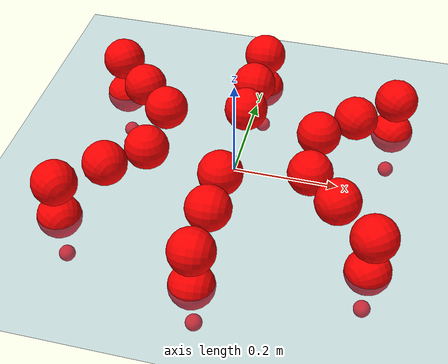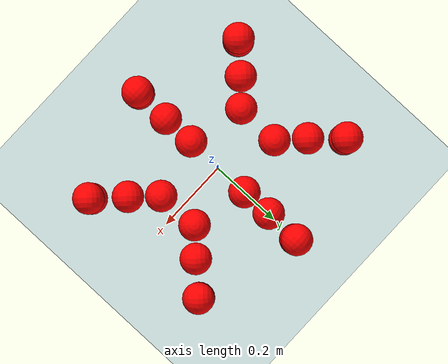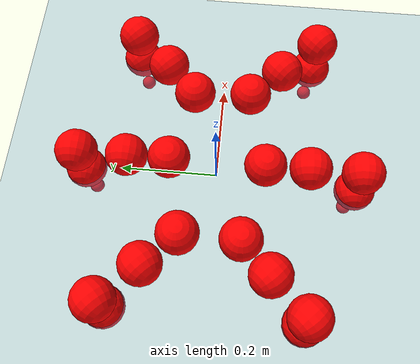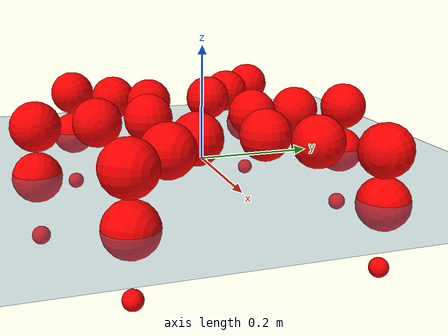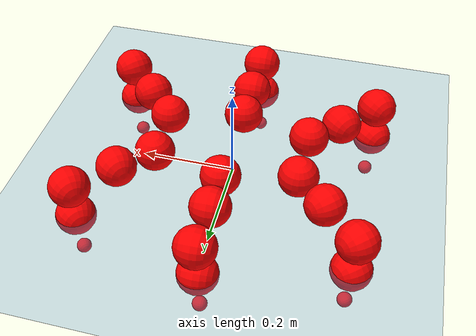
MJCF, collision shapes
<mujoco model="Golem">
  <compiler angle="radian" assetdir="assets" balanceinertia="true" inertiafromgeom="false"/>

  <option timestep="0.005" density="1.2" viscosity="2e-05"/>

  <size nkey="1"/>

  <visual>
    <quality shadowsize="8192"/>
    <map shadowclip="0.5"/>
  </visual>

  <default>
    <default class="/">
      <joint armature="0.01" damping="0.01" frictionloss="0.01"/>
      <geom contype="0" conaffinity="0" group="1" solref="-1000 -80"/>
      <site size="0.01 0.005 0.005" group="5"/>
      <general forcelimited="true" biastype="affine" gainprm="25" biasprm="0 -25 -0.5"/>
      <default class="visual">
        <geom type="mesh" group="2"/>
      </default>
      <default class="collision">
        <geom group="3"/>
      </default>
      <default class="foot">
        <geom size="0.01 0 0" condim="6" group="4" priority="1" solimp="0.015 1 0.01"/>
      </default>
      <default class="reward_collision_sphere">
        <geom group="5" rgba="1 0 0 1"/>
      </default>
    </default>
  </default>

  <asset>
    <texture type="skybox" colorspace="auto" name="//unnamed_texture_0" builtin="gradient" rgb1="0.95 0.95 0.95" rgb2="0.95 0.95 0.95" width="100" height="600"/>
    <texture type="2d" colorspace="auto" name="texplane" builtin="checker" rgb1="0.345 0.575 0.748" rgb2="0.345 0.575 0.748" markrgb="1 1 1" width="512" height="512"/>
    <material name="MatPlane" class="/" texture="texplane" texuniform="true" texrepeat="2 2" specular="0.9"/>
    <mesh name="body" class="/" file="body.stl" scale="0.001 0.001 0.001"/>
    <mesh name="coxa" class="/" file="coxa.stl" scale="0.001 0.001 0.001"/>
    <mesh name="femur" class="/" file="femur.stl" scale="0.001 0.001 0.001"/>
    <mesh name="tibia" class="/" file="tibia.stl" scale="0.001 0.001 0.001"/>
    <mesh name="tarsus" class="/" file="tarsus.stl" scale="0.001 0.001 0.001"/>
  </asset>

  <worldbody>
    <geom name="floor" class="/" size="100 100 0.125" type="plane" group="0" material="MatPlane"/>
    <light name="toplight_shadow" class="/" pos="0 0 5" dir="0.0990148 0.0990148 -0.990148" type="directional" ambient="0.04 0.04 0.04" diffuse="0.55 0.55 0.55" specular="0.12 0.12 0.12"/>
    <light name="toplight_fill" class="/" pos="0 0 5" dir="0.0990148 0.0990148 -0.990148" type="directional" castshadow="false" ambient="0.04 0.04 0.04" diffuse="0.3 0.3 0.3" specular="0.08 0.08 0.08"/>
    <body name="trunk" pos="-2.69089e-05 -0.00120728 -0.00212296" quat="1 0.000160881 -0.000484852 -0.000142744">
      <inertial pos="0.00319417 -0.00311044 -0.000471167" quat="0.999916 -0.00135743 -0.0094295 -0.0088026" mass="4.1268" diaginertia="0.0081396 0.00692205 0.029049"/>
      <joint name="//unnamed_joint_0" type="free"/>
      <geom name="//unnamed_geom_1" class="/" pos="0 0 0.0792339" quat="1 0 0 0" type="mesh" rgba="0.9 0.9 0.9 1" mesh="body"/>
      <site name="imu" class="/" pos="0.114768 0.0041057 0.117333" size="0.0104969"/>
      <camera name="track" class="/" pos="0 -1.88367 0" quat="0.707107 0.707107 0 0" mode="trackcom"/>
      <camera name="ego_camera" class="/" pos="0.125996 0 0.123803" quat="-0.5 -0.5 0.5 0.5"/>
      <body name="coxa_RR" pos="-0.173144 -0.0789374 0.0794294" quat="0.383149 -4.34872e-05 -0.000622511 -0.923687">
        <inertial pos="0.0014317 0.0025453 -0.0022873" quat="0.999904 -0.00688925 0.00720428 0.00959095" mass="0.226048" diaginertia="0.00805619 0.00720464 0.0275499"/>
        <joint name="coxa_joint_RR" class="/" pos="0 0 0" axis="-0.00779035 -0.00412014 -0.999961" stiffness="0.00831388" range="-3.08353 3.0883" armature="0.0111379" damping="0" frictionloss="0.0119269"/>
        <geom name="//unnamed_geom_2" class="/" type="mesh" rgba="0.2 0.2 0.2 1" mesh="coxa"/>
        <geom name="//unnamed_geom_3" class="reward_collision_sphere" size="0.0419875" pos="-0.029076 0 0"/>
        <body name="femur_RR" pos="0.0554508 -0.00215011 -0.00144999" quat="0.499903 -0.50024 0.499958 0.499899">
          <inertial pos="-0.000408957 -0.00104324 0.00255021" quat="0.999939 0.00103608 -0.00738021 0.00815471" mass="0.22923" diaginertia="0.00876928 0.00712651 0.0288518"/>
          <joint name="femur_joint_RR" class="/" pos="0 0 0" axis="0.00021107 0.00214067 -0.999998" range="-3.08809 3.08711" armature="0.0108574" damping="0.0189077" frictionloss="0.0103509"/>
          <geom name="//unnamed_geom_4" class="/" type="mesh" rgba="0.9 0.9 0.9 1" mesh="femur"/>
          <geom name="//unnamed_geom_5" class="reward_collision_sphere" size="0.0419875"/>
          <body name="tibia_RR" pos="-0.00167372 -0.0993344 0.00173679" quat="0.000223333 1 -9.99628e-05 0.000157499">
            <inertial pos="0.000620809 -0.000360495 0.00135466" quat="1 -3.53427e-06 0.000655984 5.54822e-05" mass="0.229095" diaginertia="0.00845031 0.00733998 0.0285347"/>
            <joint name="tibia_joint_RR" class="/" pos="0 0 0" axis="0.000275292 -3.21815e-05 1" stiffness="0.00125487" range="-3.14755 3.17161" armature="0.00906719" damping="0.0169772" frictionloss="0.00955071"/>
            <geom name="//unnamed_geom_6" class="/" type="mesh" rgba="0.2 0.2 0.2 1" mesh="tibia"/>
            <geom name="//unnamed_geom_7" class="reward_collision_sphere" size="0.0419875"/>
            <body name="tarsus_RR" pos="0.0847275 0.00131418 0.000830902" quat="0.999999 -0.000970687 0.000670307 0.000532777">
              <inertial pos="0.0612658 -0.000978724 0.00183322" quat="0.510369 0.491865 0.497372 0.500213" mass="0.230101" diaginertia="0.00865969 0.00716756 0.0283538"/>
              <joint name="tarsus_joint_RR" class="/" pos="0 0 0" axis="-0.0105014 -0.00305151 0.99994" range="-3.19017 3.14133" armature="0.0091685" damping="0.013616" frictionloss="0.0108307"/>
              <geom name="//unnamed_geom_8" class="/" type="mesh" rgba="0.9 0.9 0.9 1" mesh="tarsus"/>
              <geom name="foot_1" class="foot" size="0.0102198" pos="0.10855 0 0" quat="0 -0.707107 0 0.707107"/>
              <geom name="//unnamed_geom_10" class="reward_collision_sphere" size="0.0419875"/>
              <geom name="//unnamed_geom_11" class="reward_collision_sphere" size="0.0157453" pos="0.104189 0 0"/>
              <site name="foot_1" class="foot" pos="0.10855 0 0" quat="0 -0.707107 0 0.707107" size="0.0104969"/>
            </body>
          </body>
        </body>
      </body>
      <body name="coxa_RM" pos="-0.00158533 -0.124493 0.0815808" quat="0.706856 -0.000312318 -0.000751887 -0.707357">
        <inertial pos="0.000108292 0.000512784 -0.000665754" quat="0.99998 0.00337211 0.00119417 -0.00515708" mass="0.219737" diaginertia="0.00834275 0.00723727 0.0290798"/>
        <joint name="coxa_joint_RM" class="/" pos="0 0 0" axis="0.00375273 0.00361213 -0.999986" range="-3.13615 3.08634" armature="0.00929097" damping="0.0238696" frictionloss="0.0115791"/>
        <geom name="//unnamed_geom_12" class="/" type="mesh" rgba="0.2 0.2 0.2 1" mesh="coxa"/>
        <geom name="//unnamed_geom_13" class="reward_collision_sphere" size="0.0419875" pos="-0.029076 0 0"/>
        <body name="femur_RM" pos="0.0592128 0.001383 -0.00168393" quat="0.500129 -0.499849 0.500006 0.500016">
          <inertial pos="-0.000635912 0.00166247 -0.000778358" quat="0.999983 0.00478022 -0.00249785 -0.002287" mass="0.238983" diaginertia="0.0084921 0.00750721 0.0281313"/>
          <joint name="femur_joint_RM" class="/" pos="0 0 0" axis="0.00201266 0.00181345 -0.999996" stiffness="0.00216093" range="-3.11943 3.1927" armature="0.0114115" damping="0.0196891" frictionloss="0.0106158"/>
          <geom name="//unnamed_geom_14" class="/" type="mesh" rgba="0.9 0.9 0.9 1" mesh="femur"/>
          <geom name="//unnamed_geom_15" class="reward_collision_sphere" size="0.0419875"/>
          <body name="tibia_RM" pos="-4.14168e-05 -0.101684 -0.000999075" quat="-0.000177536 1 -5.95913e-05 -8.34889e-05">
            <inertial pos="-0.000365993 0.000256441 0.00137395" quat="0.999967 0.00803053 -0.00055158 0.000902575" mass="0.231004" diaginertia="0.00867185 0.00745983 0.0281793"/>
            <joint name="tibia_joint_RM" class="/" pos="0 0 0" axis="-0.00130212 -0.00147686 0.999998" range="-3.08489 3.17729" armature="0.0107671" damping="0.0189216" frictionloss="0.0103468"/>
            <geom name="//unnamed_geom_16" class="/" type="mesh" rgba="0.2 0.2 0.2 1" mesh="tibia"/>
            <geom name="//unnamed_geom_17" class="reward_collision_sphere" size="0.0419875"/>
            <body name="tarsus_RM" pos="0.0872974 0.00136424 0.00227225" quat="1 -0.000636994 -0.000489066 -0.000411997">
              <inertial pos="0.0574726 -0.00201396 -0.000456955" quat="0.500334 0.498144 0.503751 0.497748" mass="0.234764" diaginertia="0.00859227 0.00738974 0.0288908"/>
              <joint name="tarsus_joint_RM" class="/" pos="0 0 0" axis="-0.00162445 0.0133271 0.99991" range="-3.08511 3.10422" armature="0.00906195" damping="0.00595502" frictionloss="0.0115379"/>
              <geom name="//unnamed_geom_18" class="/" type="mesh" rgba="0.9 0.9 0.9 1" mesh="tarsus"/>
              <geom name="foot_2" class="foot" size="0.00959763" pos="0.10855 0 0" quat="0 -0.707107 0 0.707107"/>
              <geom name="//unnamed_geom_20" class="reward_collision_sphere" size="0.0419875"/>
              <geom name="//unnamed_geom_21" class="reward_collision_sphere" size="0.0157453" pos="0.104189 0 0"/>
              <site name="foot_2" class="foot" pos="0.10855 0 0" quat="0 -0.707107 0 0.707107" size="0.0104969"/>
            </body>
          </body>
        </body>
      </body>
      <body name="coxa_RF" pos="0.175366 -0.0766092 0.0805618" quat="0.923843 -7.75112e-05 3.87988e-05 -0.382772">
        <inertial pos="0.000517575 -0.000231148 -0.00129344" quat="0.999937 0.00099754 -0.00324533 0.010692" mass="0.228352" diaginertia="0.00835632 0.00727797 0.0279997"/>
        <joint name="coxa_joint_RF" class="/" pos="0 0 0" axis="0.00399021 -0.00998253 -0.999942" range="-3.14394 3.09472" armature="0.00987786" damping="0.00165265" frictionloss="0.0105512"/>
        <geom name="//unnamed_geom_22" class="/" type="mesh" rgba="0.2 0.2 0.2 1" mesh="coxa"/>
        <geom name="//unnamed_geom_23" class="reward_collision_sphere" size="0.0419875" pos="-0.029076 0 0"/>
        <body name="femur_RF" pos="0.0570826 -0.00127544 0.00213964" quat="0.500427 -0.499665 0.4999 0.500008">
          <inertial pos="0.00097567 -0.0011049 -0.00206451" quat="0.999918 0.00269493 -0.00630358 -0.0108094" mass="0.229178" diaginertia="0.00821462 0.00715933 0.0283366"/>
          <joint name="femur_joint_RF" class="/" pos="0 0 0" axis="-0.0100998 0.00990472 -0.9999" range="-3.08502 3.14431" armature="0.010351" damping="0.00932368" frictionloss="0.0107593"/>
          <geom name="//unnamed_geom_24" class="/" type="mesh" rgba="0.9 0.9 0.9 1" mesh="femur"/>
          <geom name="//unnamed_geom_25" class="reward_collision_sphere" size="0.0419875"/>
          <body name="tibia_RF" pos="-0.00212642 -0.102218 0.000490622" quat="-0.000157955 0.999999 -0.000635445 -0.0011997">
            <inertial pos="0.000402625 0.000103354 -0.00111872" quat="0.999999 -0.000203109 -0.000756847 0.000780793" mass="0.244349" diaginertia="0.00843717 0.00740075 0.0293356"/>
            <joint name="tibia_joint_RF" class="/" pos="0 0 0" axis="5.74869e-05 7.62287e-05 1" stiffness="0.0223394" range="-3.19349 3.12476" armature="0.0100427" damping="0.0362793" frictionloss="0.00925347"/>
            <geom name="//unnamed_geom_26" class="/" type="mesh" rgba="0.2 0.2 0.2 1" mesh="tibia"/>
            <geom name="//unnamed_geom_27" class="reward_collision_sphere" size="0.0419875"/>
            <body name="tarsus_RF" pos="0.0868378 -0.00305284 0.00112521" quat="1 5.19639e-05 1.351e-05 2.14733e-05">
              <inertial pos="0.0610676 0.00142042 -0.000264211" quat="0.510304 0.491488 0.49996 0.498065" mass="0.221772" diaginertia="0.0079772 0.00708311 0.0284455"/>
              <joint name="tarsus_joint_RF" class="/" pos="0 0 0" axis="-0.00113705 0.00590191 0.999982" stiffness="0.00820403" range="-3.15802 3.10177" armature="0.00931303" damping="0.00885332" frictionloss="0.0118037"/>
              <geom name="//unnamed_geom_28" class="/" type="mesh" rgba="0.9 0.9 0.9 1" mesh="tarsus"/>
              <geom name="foot_3" class="foot" size="0.0114452" pos="0.10855 0 0" quat="0 -0.707107 0 0.707107"/>
              <geom name="//unnamed_geom_30" class="reward_collision_sphere" size="0.0419875"/>
              <geom name="//unnamed_geom_31" class="reward_collision_sphere" size="0.0157453" pos="0.104189 0 0"/>
              <site name="foot_3" class="foot" pos="0.10855 0 0" quat="0 -0.707107 0 0.707107" size="0.0104969"/>
            </body>
          </body>
        </body>
      </body>
      <body name="coxa_LR" pos="-0.171333 0.0811199 0.079702" quat="0.382905 -0.000220087 -2.75533e-05 0.923788">
        <inertial pos="-0.00254155 0.000840763 -0.000454719" quat="0.999965 -0.00417451 0.00297857 -0.00666811" mass="0.237383" diaginertia="0.00843508 0.00736351 0.0297288"/>
        <joint name="coxa_joint_LR" class="/" pos="0 0 0" axis="-0.00607631 -0.00568773 -0.999965" stiffness="0.0111394" range="-3.19433 3.13937" armature="0.0106321" damping="0.0126895" frictionloss="0.0113928"/>
        <geom name="//unnamed_geom_32" class="/" type="mesh" rgba="0.2 0.2 0.2 1" mesh="coxa"/>
        <geom name="//unnamed_geom_33" class="reward_collision_sphere" size="0.0419875" pos="-0.029076 0 0"/>
        <body name="femur_LR" pos="0.0582738 0.00156025 -0.000845994" quat="0.500668 -0.500245 0.500158 0.498927">
          <inertial pos="0.000161017 0.00166352 0.00251269" quat="0.999996 -0.00160109 -0.00243323 -0.000681433" mass="0.217622" diaginertia="0.00848269 0.0069908 0.0275876"/>
          <joint name="femur_joint_LR" class="/" pos="0 0 0" axis="0.00977303 0.00363474 0.999946" stiffness="5.08939e-05" range="-3.1941 3.19387" armature="0.00965359" damping="0.013403" frictionloss="0.00998774"/>
          <geom name="//unnamed_geom_34" class="/" type="mesh" rgba="0.9 0.9 0.9 1" mesh="femur"/>
          <geom name="//unnamed_geom_35" class="reward_collision_sphere" size="0.0419875"/>
          <body name="tibia_LR" pos="-2.07426e-05 -0.101659 -0.00195555" quat="-7.18799e-05 0.999999 -0.000931913 -0.00100442">
            <inertial pos="-0.0025402 0.00276717 0.00133966" quat="0.999957 0.00582461 0.00456645 0.00563204" mass="0.237513" diaginertia="0.00893991 0.00785281 0.0287657"/>
            <joint name="tibia_joint_LR" class="/" pos="0 0 0" axis="0.00306125 0.00363094 -0.999989" range="-3.15238 3.17168" armature="0.00984181" damping="0" frictionloss="0.0104273"/>
            <geom name="//unnamed_geom_36" class="/" type="mesh" rgba="0.2 0.2 0.2 1" mesh="tibia"/>
            <geom name="//unnamed_geom_37" class="reward_collision_sphere" size="0.0419875"/>
            <body name="tarsus_LR" pos="0.0879807 -0.00161045 -0.000742148" quat="1 1.95116e-05 2.0933e-05 -4.88976e-05">
              <inertial pos="0.0581692 -0.000380166 0.00162394" quat="0.499988 0.499941 0.500365 0.499705" mass="0.223962" diaginertia="0.00825001 0.00701053 0.0290304"/>
              <joint name="tarsus_joint_LR" class="/" pos="0 0 0" axis="-0.00347664 -0.00471732 -0.999983" stiffness="0.00994335" range="-3.17756 3.18566" armature="0.0105588" damping="0.00852822" frictionloss="0.00925114"/>
              <geom name="//unnamed_geom_38" class="/" type="mesh" rgba="0.9 0.9 0.9 1" mesh="tarsus"/>
              <geom name="foot_4" class="foot" size="0.011483" pos="0.10855 0 0" quat="0.707107 0 -0.707107 0"/>
              <geom name="//unnamed_geom_40" class="reward_collision_sphere" size="0.0419875"/>
              <geom name="//unnamed_geom_41" class="reward_collision_sphere" size="0.0157453" pos="0.104189 0 0"/>
              <site name="foot_4" class="foot" pos="0.10855 0 0" quat="0.707107 0 -0.707107 0" size="0.0104969"/>
            </body>
          </body>
        </body>
      </body>
      <body name="coxa_LM" pos="0.00103694 0.123989 0.0783953" quat="0.707812 -0.000661134 0.00020189 0.706401">
        <inertial pos="-0.000485873 -0.000678357 0.000390574" quat="0.999973 -0.00637708 -0.00290778 0.00213" mass="0.229931" diaginertia="0.00910608 0.00769802 0.0298564"/>
        <joint name="coxa_joint_LM" class="/" pos="0 0 0" axis="0.00354304 0.0121192 -0.99992" range="-3.16894 3.15779" armature="0.0119723" damping="0.0110393" frictionloss="0.0106366"/>
        <geom name="//unnamed_geom_42" class="/" type="mesh" rgba="0.2 0.2 0.2 1" mesh="coxa"/>
        <geom name="//unnamed_geom_43" class="reward_collision_sphere" size="0.0419875" pos="-0.029076 0 0"/>
        <body name="femur_LM" pos="0.0548798 0.00240315 -0.000185125" quat="0.500133 -0.500055 0.499981 0.499831">
          <inertial pos="-0.0015515 0.000595513 0.00150209" quat="0.999971 -0.00641772 -0.00395288 0.000583726" mass="0.227145" diaginertia="0.00824114 0.00721585 0.0277659"/>
          <joint name="femur_joint_LM" class="/" pos="0 0 0" axis="-0.0105802 -0.0029055 0.99994" stiffness="0.00950027" range="-3.09692 3.16315" armature="0.00938495" damping="0.0126796" frictionloss="0.0100762"/>
          <geom name="//unnamed_geom_44" class="/" type="mesh" rgba="0.9 0.9 0.9 1" mesh="femur"/>
          <geom name="//unnamed_geom_45" class="reward_collision_sphere" size="0.0419875"/>
          <body name="tibia_LM" pos="-0.000931819 -0.0995827 -0.000496343" quat="0.00124051 0.999999 -8.3359e-05 0.000753105">
            <inertial pos="0.0028948 -0.00086428 5.34513e-05" quat="0.99998 0.0019914 0.00161491 0.00585173" mass="0.244029" diaginertia="0.00872214 0.00760002 0.0297605"/>
            <joint name="tibia_joint_LM" class="/" pos="0 0 0" axis="0.00441917 -9.46142e-06 -0.99999" stiffness="0.00680143" range="-3.12007 3.08579" armature="0.00929406" damping="0.0191354" frictionloss="0.0110564"/>
            <geom name="//unnamed_geom_46" class="/" type="mesh" rgba="0.2 0.2 0.2 1" mesh="tibia"/>
            <geom name="//unnamed_geom_47" class="reward_collision_sphere" size="0.0419875"/>
            <body name="tarsus_LM" pos="0.0846218 -0.00180422 -0.000637951" quat="1 0.000241963 0.000126992 -5.1841e-05">
              <inertial pos="0.0552786 -0.000774283 -0.000884846" quat="0.503085 0.498921 0.489951 0.50787" mass="0.239321" diaginertia="0.00849287 0.00776858 0.0287255"/>
              <joint name="tarsus_joint_LM" class="/" pos="0 0 0" axis="0.00311635 -0.0124981 -0.999917" range="-3.13866 3.1302" armature="0.00963013" damping="0.00156558" frictionloss="0.00991526"/>
              <geom name="//unnamed_geom_48" class="/" type="mesh" rgba="0.9 0.9 0.9 1" mesh="tarsus"/>
              <geom name="foot_5" class="foot" size="0.0115291" pos="0.10855 0 0" quat="0.707107 0 -0.707107 0"/>
              <geom name="//unnamed_geom_50" class="reward_collision_sphere" size="0.0419875"/>
              <geom name="//unnamed_geom_51" class="reward_collision_sphere" size="0.0157453" pos="0.104189 0 0"/>
              <site name="foot_5" class="foot" pos="0.10855 0 0" quat="0.707107 0 -0.707107 0" size="0.0104969"/>
            </body>
          </body>
        </body>
      </body>
      <body name="coxa_LF" pos="0.171996 0.0789081 0.0769887" quat="0.923878 -0.00090857 0.000571413 0.382685">
        <inertial pos="0.00042792 0.00171858 -0.00177423" quat="0.999923 -0.00978807 -0.00480866 0.00583908" mass="0.230638" diaginertia="0.00842909 0.00743728 0.029145"/>
        <joint name="coxa_joint_LF" class="/" pos="0 0 0" axis="-0.00310612 0.000758932 -0.999995" range="-3.18938 3.13402" armature="0.0120414" damping="0.0225499" frictionloss="0.00973316"/>
        <geom name="//unnamed_geom_52" class="/" type="mesh" rgba="0.2 0.2 0.2 1" mesh="coxa"/>
        <geom name="//unnamed_geom_53" class="reward_collision_sphere" size="0.0419875" pos="-0.029076 0 0"/>
        <body name="femur_LF" pos="0.0581502 -3.00943e-05 -0.000211941" quat="0.500328 -0.500064 0.499425 0.500182">
          <inertial pos="0.000390778 -0.0025777 0.00243252" quat="1 9.88916e-05 -8.8389e-05 -0.00012062" mass="0.237449" diaginertia="0.0085856 0.00734942 0.0289999"/>
          <joint name="femur_joint_LF" class="/" pos="0 0 0" axis="-0.000516155 0.000114405 1" range="-3.19407 3.16469" armature="0.0113621" damping="0" frictionloss="0.0110043"/>
          <geom name="//unnamed_geom_54" class="/" type="mesh" rgba="0.9 0.9 0.9 1" mesh="femur"/>
          <geom name="//unnamed_geom_55" class="reward_collision_sphere" size="0.0419875"/>
          <body name="tibia_LF" pos="0.00160157 -0.102438 0.00279442" quat="-0.00113457 0.999999 -0.000592761 -0.000192238">
            <inertial pos="0.00223267 0.000193355 -0.00260672" quat="0.999999 0.000908503 0.000153235 -0.00145633" mass="0.231451" diaginertia="0.00812501 0.00729475 0.0274698"/>
            <joint name="tibia_joint_LF" class="/" pos="0 0 0" axis="0.00450429 -0.00790155 -0.999959" stiffness="0.0161507" range="-3.14769 3.11453" armature="0.00906348" damping="0.0183179" frictionloss="0.0117354"/>
            <geom name="//unnamed_geom_56" class="/" type="mesh" rgba="0.2 0.2 0.2 1" mesh="tibia"/>
            <geom name="//unnamed_geom_57" class="reward_collision_sphere" size="0.0419875"/>
            <body name="tarsus_LF" pos="0.0827368 0.00104355 -0.00142224" quat="1 -2.64374e-05 0.000140847 -3.29184e-06">
              <inertial pos="0.060157 0.00278612 -0.00241109" quat="0.494397 0.497733 0.500175 0.507601" mass="0.222235" diaginertia="0.00847382 0.00733689 0.0288394"/>
              <joint name="tarsus_joint_LF" class="/" pos="0 0 0" axis="0.0118691 -0.000971194 -0.999929" stiffness="0.0320107" range="-3.08624 3.10439" armature="0.0107471" damping="0.0182575" frictionloss="0.00906164"/>
              <geom name="//unnamed_geom_58" class="/" type="mesh" rgba="0.9 0.9 0.9 1" mesh="tarsus"/>
              <geom name="foot_6" class="foot" size="0.0109014" pos="0.10855 0 0" quat="0.707107 0 -0.707107 0"/>
              <geom name="//unnamed_geom_60" class="reward_collision_sphere" size="0.0419875"/>
              <geom name="//unnamed_geom_61" class="reward_collision_sphere" size="0.0157453" pos="0.104189 0 0"/>
              <site name="foot_6" class="foot" pos="0.10855 0 0" quat="0.707107 0 -0.707107 0" size="0.0104969"/>
            </body>
          </body>
        </body>
      </body>
    </body>
  </worldbody>

  <contact>
    <pair class="/" geom1="floor" geom2="foot_1" name="//unnamed_contact_0"/>
    <pair class="/" geom1="floor" geom2="foot_2" name="//unnamed_contact_1"/>
    <pair class="/" geom1="floor" geom2="foot_3" name="//unnamed_contact_2"/>
    <pair class="/" geom1="floor" geom2="foot_4" name="//unnamed_contact_3"/>
    <pair class="/" geom1="floor" geom2="foot_5" name="//unnamed_contact_4"/>
    <pair class="/" geom1="floor" geom2="foot_6" name="//unnamed_contact_5"/>
  </contact>

  <actuator>
    <general name="coxa_joint_RR" class="/" joint="coxa_joint_RR" forcerange="-7.55204 7.55204" gainprm="25.3749" biasprm="0 -25.3749 -0.576199"/>
    <general name="femur_joint_RR" class="/" joint="femur_joint_RR" forcerange="-8.33297 8.33297" gainprm="25.3749" biasprm="0 -25.3749 -0.576199"/>
    <general name="tibia_joint_RR" class="/" joint="tibia_joint_RR" forcerange="-7.69916 7.69916" gainprm="25.3749" biasprm="0 -25.3749 -0.576199"/>
    <general name="tarsus_joint_RR" class="/" joint="tarsus_joint_RR" forcerange="-7.96973 7.96973" gainprm="25.3749" biasprm="0 -25.3749 -0.576199"/>
    <general name="coxa_joint_RM" class="/" joint="coxa_joint_RM" forcerange="-6.87155 6.87155" gainprm="25.3749" biasprm="0 -25.3749 -0.576199"/>
    <general name="femur_joint_RM" class="/" joint="femur_joint_RM" forcerange="-7.94915 7.94915" gainprm="25.3749" biasprm="0 -25.3749 -0.576199"/>
    <general name="tibia_joint_RM" class="/" joint="tibia_joint_RM" forcerange="-8.37205 8.37205" gainprm="25.3749" biasprm="0 -25.3749 -0.576199"/>
    <general name="tarsus_joint_RM" class="/" joint="tarsus_joint_RM" forcerange="-8.45893 8.45893" gainprm="25.3749" biasprm="0 -25.3749 -0.576199"/>
    <general name="coxa_joint_RF" class="/" joint="coxa_joint_RF" forcerange="-7.35048 7.35048" gainprm="25.3749" biasprm="0 -25.3749 -0.576199"/>
    <general name="femur_joint_RF" class="/" joint="femur_joint_RF" forcerange="-7.89775 7.89775" gainprm="25.3749" biasprm="0 -25.3749 -0.576199"/>
    <general name="tibia_joint_RF" class="/" joint="tibia_joint_RF" forcerange="-8.43716 8.43716" gainprm="25.3749" biasprm="0 -25.3749 -0.576199"/>
    <general name="tarsus_joint_RF" class="/" joint="tarsus_joint_RF" forcerange="-7.99907 7.99907" gainprm="25.3749" biasprm="0 -25.3749 -0.576199"/>
    <general name="coxa_joint_LR" class="/" joint="coxa_joint_LR" forcerange="-7.51678 7.51678" gainprm="25.3749" biasprm="0 -25.3749 -0.576199"/>
    <general name="femur_joint_LR" class="/" joint="femur_joint_LR" forcerange="-7.65191 7.65191" gainprm="25.3749" biasprm="0 -25.3749 -0.576199"/>
    <general name="tibia_joint_LR" class="/" joint="tibia_joint_LR" forcerange="-7.63568 7.63568" gainprm="25.3749" biasprm="0 -25.3749 -0.576199"/>
    <general name="tarsus_joint_LR" class="/" joint="tarsus_joint_LR" forcerange="-7.44149 7.44149" gainprm="25.3749" biasprm="0 -25.3749 -0.576199"/>
    <general name="coxa_joint_LM" class="/" joint="coxa_joint_LM" forcerange="-7.14137 7.14137" gainprm="25.3749" biasprm="0 -25.3749 -0.576199"/>
    <general name="femur_joint_LM" class="/" joint="femur_joint_LM" forcerange="-7.22513 7.22513" gainprm="25.3749" biasprm="0 -25.3749 -0.576199"/>
    <general name="tibia_joint_LM" class="/" joint="tibia_joint_LM" forcerange="-7.58338 7.58338" gainprm="25.3749" biasprm="0 -25.3749 -0.576199"/>
    <general name="tarsus_joint_LM" class="/" joint="tarsus_joint_LM" forcerange="-8.45629 8.45629" gainprm="25.3749" biasprm="0 -25.3749 -0.576199"/>
    <general name="coxa_joint_LF" class="/" joint="coxa_joint_LF" forcerange="-6.91151 6.91151" gainprm="25.3749" biasprm="0 -25.3749 -0.576199"/>
    <general name="femur_joint_LF" class="/" joint="femur_joint_LF" forcerange="-7.79462 7.79462" gainprm="25.3749" biasprm="0 -25.3749 -0.576199"/>
    <general name="tibia_joint_LF" class="/" joint="tibia_joint_LF" forcerange="-7.58424 7.58424" gainprm="25.3749" biasprm="0 -25.3749 -0.576199"/>
    <general name="tarsus_joint_LF" class="/" joint="tarsus_joint_LF" forcerange="-7.75024 7.75024" gainprm="25.3749" biasprm="0 -25.3749 -0.576199"/>
  </actuator>

  <sensor>
    <gyro site="imu" name="imu_angular_velocity"/>
    <velocimeter site="imu" name="imu_linear_velocity"/>
    <framelinvel objtype="site" objname="foot_1" name="foot_1_global_linear_velocity"/>
    <framelinvel objtype="site" objname="foot_2" name="foot_2_global_linear_velocity"/>
    <framelinvel objtype="site" objname="foot_3" name="foot_3_global_linear_velocity"/>
    <framelinvel objtype="site" objname="foot_4" name="foot_4_global_linear_velocity"/>
    <framelinvel objtype="site" objname="foot_5" name="foot_5_global_linear_velocity"/>
    <framelinvel objtype="site" objname="foot_6" name="foot_6_global_linear_velocity"/>
  </sensor>

  <keyframe>
    <key name="home" qpos="0 0 0.1457 1 0 0 0 0 0 0 0 0 0 0 0 0 0 0 0 0 0 0 0 0 0 0 0 0 0 0 0"/>
  </keyframe>
</mujoco>
